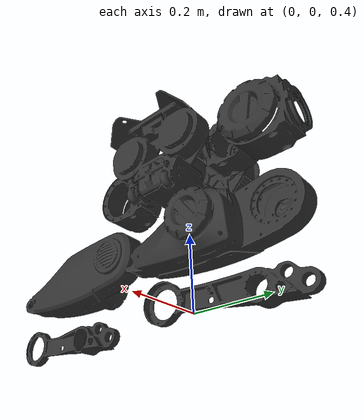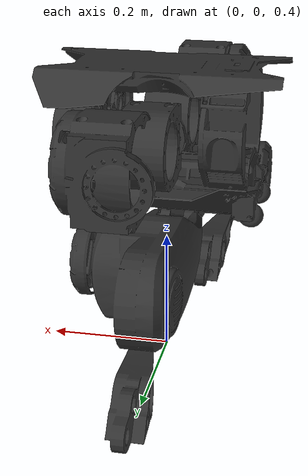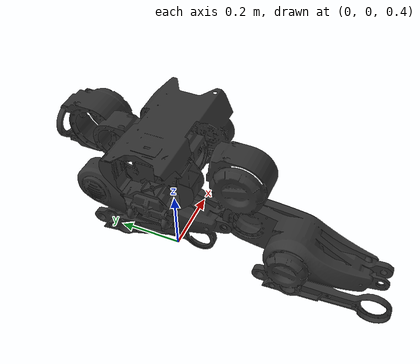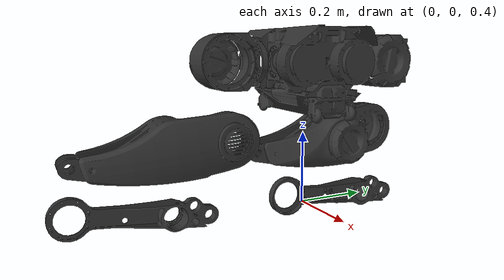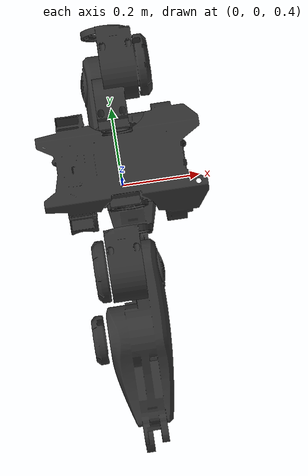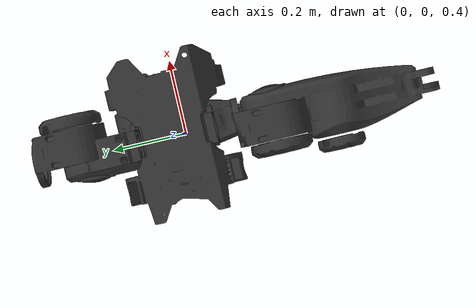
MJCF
<mujoco model="tita">
  <compiler angle="radian" meshdir="../meshes/" autolimits="true" />
  <option cone="elliptic" impratio="100" />
  <default>
    <default class="tita">
      <geom friction="0.4" margin="0.001" condim="1"/>
      <joint axis="0 1 0" damping="0.1" armature="0.01" frictionloss="0.2"/>
      <default class="visual">
        <geom type="mesh" contype="0" conaffinity="0" group="2" />
      </default>
      <default class="collision">
        <geom group="3" />
      </default>
    </default>
  </default>
  <asset>
    <material name="metal" rgba=".9 .95 .95 1" />
    <material name="black" rgba="0 0 0 1" />
    <material name="white" rgba="1 1 1 1" />
    <material name="gray" rgba="0.671705 0.692426 0.774270 1" />

    <mesh name="base_link" file="base_link.STL"/>
    <mesh name="left_leg_1" file="left_leg_1.STL"/>
    <mesh name="left_leg_2" file="left_leg_2.STL"/>
    <mesh name="left_leg_3" file="left_leg_3.STL"/>
    <mesh name="left_leg_4" file="left_leg_4.STL"/>
    <mesh name="right_leg_1" file="right_leg_1.STL"/>
    <mesh name="right_leg_2" file="right_leg_2.STL"/>
    <mesh name="right_leg_3" file="right_leg_3.STL"/>
    <mesh name="right_leg_4" file="right_leg_4.STL"/>
  </asset>

  <worldbody>
    <body name="base_link" pos="0 0 0.8" childclass="tita">
      <inertial pos="0.020452 3.5457E-06 0.01871" quat="0 0 0 1" mass="13.2" diaginertia="0.061855 0.036934 0.071232"/>
      <freejoint />
      <site name="trunk_imu" size="0.01"/>
      <geom type="mesh" class="visual" density="0" rgba="0.196078 0.196078 0.196078 1" mesh="base_link"/>
      <geom size="0.235 0.15 0.095" pos="0 0 0.017" type="box" class="collision" rgba="0.196078 0.196078 0.196078 1"/>
      <body name="left_leg_1" pos="0 0.0895 0" quat="0.499998 0.5 0.500002 0.5">
        <inertial pos="0.0016025 5.0253e-05 0.000638" quat="0.999804 -0.0010502 -0.019755 -9.57202e-05" mass="2.064" diaginertia="0.00430758 0.0029982 0.00226711"/>
        <joint name="joint_left_leg_1" pos="0 0 0" axis="0 0 1" range="-0.785398 0.785398" actuatorfrcrange="-100 100"/>
        <geom type="mesh" class="visual" density="0" rgba="0.196078 0.196078 0.196078 1" mesh="left_leg_1"/>
        <body name="left_leg_2" pos="0.1426 0 0" quat="0.499998 -0.5 0.500002 -0.5">
          <inertial pos="0.021763 0.0019069 -0.027868" quat="-0.00931458 0.711777 0.0101084 0.702271" mass="3.0984" diaginertia="0.00883636 0.00648624 0.00297469"/>
          <joint name="joint_left_leg_2" pos="0 0 0" axis="0 0 1" range="-1.91986 3.49066" actuatorfrcrange="-100 100"/>
          <geom type="mesh" class="visual" density="0" rgba="0.196078 0.196078 0.196078 1" mesh="left_leg_2"/>
          <body name="left_leg_3" pos="0.2 0 0">
            <inertial pos="0.095348 0.011698 0.001838" quat="0.03753 0.692169 -0.047281 0.719207" mass="0.57244" diaginertia="0.00342536 0.00324384 0.000258551"/>
            <joint name="joint_left_leg_3" pos="0 0 0" axis="0 0 1" range="-2.67035 -0.698132" actuatorfrcrange="-100 100"/>
            <geom type="mesh" class="visual" density="0" rgba="0.196078 0.196078 0.196078 1" mesh="left_leg_3"/>
            <geom size="0.1 0.035 0.025" pos="0.1 0.021 -0.002" quat="0.997856 0 0 -0.0654532" type="box" class="collision" rgba="0.196078 0.196078 0.196078 1"/>
            <body name="left_leg_4" pos="0.2 0 0.0514">
              <inertial pos="-2.267e-06 -1.6471e-06 -0.00095616" quat="0.457615 0.539031 -0.457649 0.539066" mass="1.5094" diaginertia="0.0069049 0.00354775 0.00350415"/>
              <joint name="joint_left_leg_4" pos="0 0 0" axis="0 0 1" range="-62831.8 62831.8" actuatorfrcrange="-100 100"/>
              <geom type="mesh" class="visual" density="0" rgba="0.196078 0.196078 0.196078 1" mesh="left_leg_4"/>
              <geom size="0.0925 0.017" type="cylinder" class="collision" rgba="0.196078 0.196078 0.196078 1"/>
            </body>
          </body>
        </body>
      </body>
      <body name="right_leg_1" pos="0 -0.0895 0" quat="0.499998 0.5 0.500002 0.5">
        <inertial pos="-0.0016025 5.0253e-05 0.00063801" quat="0.999804 -0.00104426 0.019755 9.54715e-05" mass="2.064" diaginertia="0.00430758 0.0029982 0.00226711"/>
        <joint name="joint_right_leg_1" pos="0 0 0" axis="0 0 1" range="-0.785398 0.785398" actuatorfrcrange="-100 100"/>
        <geom type="mesh" class="visual" density="0" rgba="0.196078 0.196078 0.196078 1" mesh="right_leg_1"/>
        <body name="right_leg_2" pos="-0.1426 0 0" quat="0.499998 -0.5 0.500002 -0.5">
          <inertial pos="0.021763 0.0019065 0.027873" quat="-0.0101102 0.702272 0.00931581 0.711776" mass="3.0987" diaginertia="0.00883636 0.00648624 0.00297469"/>
          <joint name="joint_right_leg_2" pos="0 0 0" axis="0 0 1" range="-1.91986 3.49066" actuatorfrcrange="-100 100"/>
          <geom type="mesh" class="visual" density="0" rgba="0.196078 0.196078 0.196078 1" mesh="right_leg_2"/>
          <body name="right_leg_3" pos="0.2 0 0">
            <inertial pos="0.095348 0.011698 -0.001838" quat="0.047281 0.719207 -0.03753 0.692169" mass="0.57244" diaginertia="0.00342536 0.00324384 0.000258551"/>
            <joint name="joint_right_leg_3" pos="0 0 0" axis="0 0 1" range="-2.67035 -0.698132" actuatorfrcrange="-100 100"/>
            <geom type="mesh" class="visual" density="0" rgba="0.196078 0.196078 0.196078 1" mesh="right_leg_3"/>
            <geom size="0.1 0.035 0.025" pos="0.1 0.021 -0.002" quat="0.997856 0 0 -0.0654532" type="box" class="collision" rgba="0.196078 0.196078 0.196078 1"/>
            <body name="right_leg_4" pos="0.2 0 -0.0514">
              <inertial pos="-2.3798e-06 -1.5854e-06 0.00095595" quat="0.457221 0.539429 -0.457186 0.539395" mass="1.5094" diaginertia="0.0069047 0.00354767 0.00350403"/>
              <joint name="joint_right_leg_4" pos="0 0 0" axis="0 0 1" range="-62831.8 62831.8" actuatorfrcrange="-100 100"/>
              <geom type="mesh" class="visual" density="0" rgba="0.196078 0.196078 0.196078 1" mesh="right_leg_4"/>
              <geom size="0.0925 0.017" type="cylinder" class="collision" rgba="0.196078 0.196078 0.196078 1"/>
            </body>
          </body>
        </body>
      </body>
    </body>
  </worldbody>
  <actuator>
    <motor name="left_leg_1" joint="joint_left_leg_1" />
    <motor name="left_leg_2" joint="joint_left_leg_2" />
    <motor name="left_leg_3" joint="joint_left_leg_3" />
    <motor name="left_leg_4" joint="joint_left_leg_4" />

    <motor name="right_leg_1" joint="joint_right_leg_1" />
    <motor name="right_leg_2" joint="joint_right_leg_2" />
    <motor name="right_leg_3" joint="joint_right_leg_3" />
    <motor name="right_leg_4" joint="joint_right_leg_4" />

  </actuator>

  <sensor>
    <jointpos name="left_leg_1_pos" joint="joint_left_leg_1" />
    <jointpos name="left_leg_2_pos" joint="joint_left_leg_2" />
    <jointpos name="left_leg_3_pos" joint="joint_left_leg_3" />
    <jointpos name="left_leg_4_pos" joint="joint_left_leg_4" />

    <jointpos name="right_leg_1_pos" joint="joint_right_leg_1" />
    <jointpos name="right_leg_2_pos" joint="joint_right_leg_2" />
    <jointpos name="right_leg_3_pos" joint="joint_right_leg_3" />
    <jointpos name="right_leg_4_pos" joint="joint_right_leg_4" />

    <jointvel name="left_leg_1_vel" joint="joint_left_leg_1" />
    <jointvel name="left_leg_2_vel" joint="joint_left_leg_2" />
    <jointvel name="left_leg_3_vel" joint="joint_left_leg_3" />
    <jointvel name="left_leg_4_vel" joint="joint_left_leg_4" />

    <jointvel name="right_leg_1_vel" joint="joint_right_leg_1" />
    <jointvel name="right_leg_2_vel" joint="joint_right_leg_2" />
    <jointvel name="right_leg_3_vel" joint="joint_right_leg_3" />
    <jointvel name="right_leg_4_vel" joint="joint_right_leg_4" />

    <jointactuatorfrc name="left_leg_1_torque" joint="joint_left_leg_1" noise="0.01" />
    <jointactuatorfrc name="left_leg_2_torque" joint="joint_left_leg_2" noise="0.01" />
    <jointactuatorfrc name="left_leg_3_torque" joint="joint_left_leg_3" noise="0.01" />
    <jointactuatorfrc name="left_leg_4_torque" joint="joint_left_leg_4" noise="0.01" />

    <jointactuatorfrc name="right_leg_1_torque" joint="joint_right_leg_1" noise="0.01"/>
    <jointactuatorfrc name="right_leg_2_torque" joint="joint_right_leg_2" noise="0.01"/>
    <jointactuatorfrc name="right_leg_3_torque" joint="joint_right_leg_3" noise="0.01"/>
    <jointactuatorfrc name="right_leg_4_torque" joint="joint_right_leg_4" noise="0.01"/>

    <framequat name="trunk_quat" objtype="site" objname="trunk_imu" />
    <gyro name="trunk_gyro" site="trunk_imu" />
    <accelerometer name="trunk_accel" site="trunk_imu" />

    <framepos name="frame_pos" objtype="site" objname="trunk_imu" />
    <framelinvel name="frame_vel" objtype="site" objname="trunk_imu" />
  </sensor>

</mujoco>
